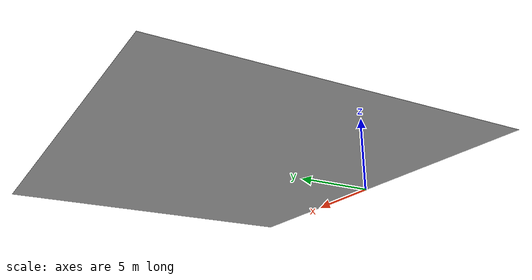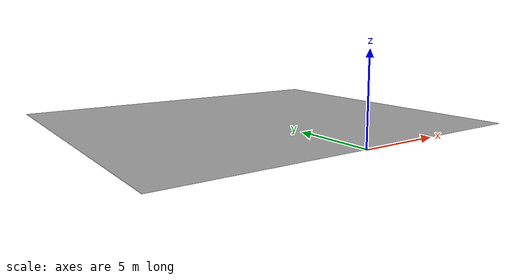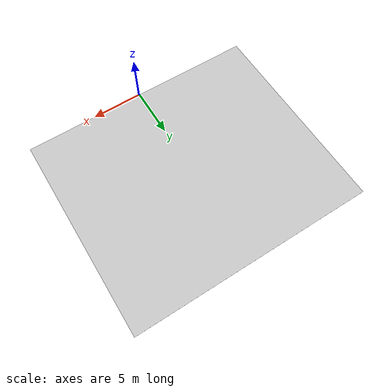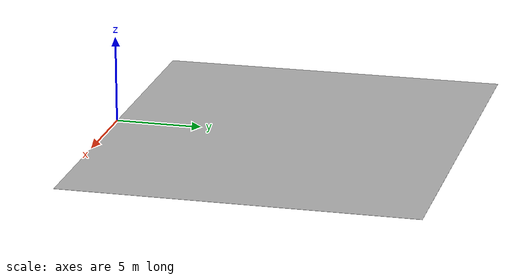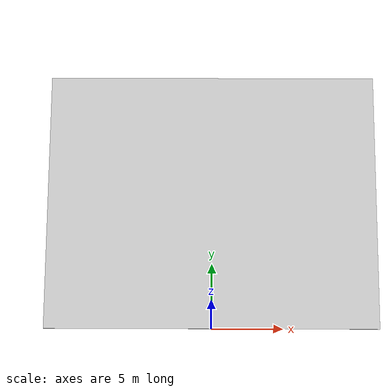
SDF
<?xml version="1.0" ?>
<sdf version="1.6">
  <model name="walkway_metal_straight">
    <static>true</static>
    <link name="link">
      <collision name="collision">
        <pose>0 0.762 0.076075 0 0 0</pose>
        <geometry>
          <box>
            <size>0.00955 0.00625 0.0001</size>
          </box>
        </geometry>
      </collision>

      <visual name="visual">
         <geometry>
           <mesh>
             <scale>0.01555 0.01325 0.0001</scale>
             <uri>model://walkway_metal_straight/meshes/mesh.obj</uri>
           </mesh>
         </geometry>
       </visual>
    </link>
  </model>
</sdf>
